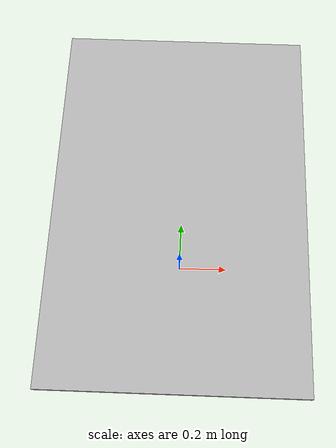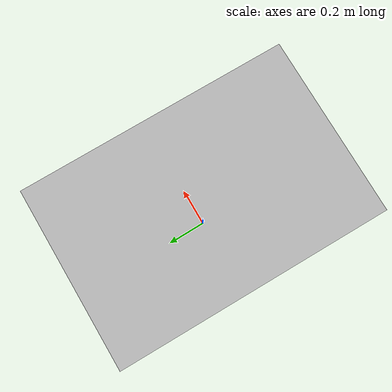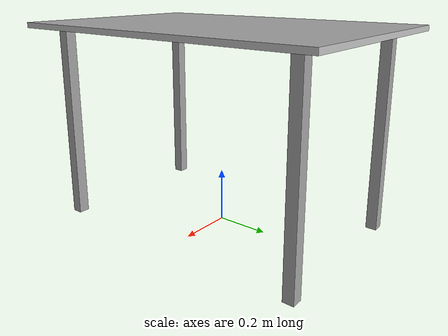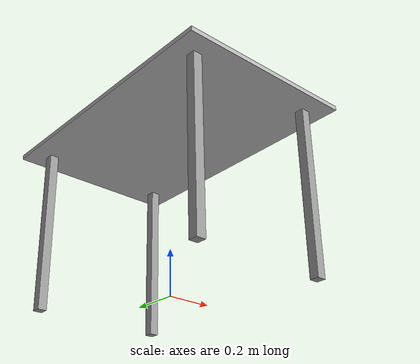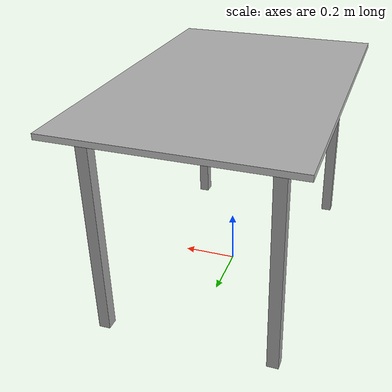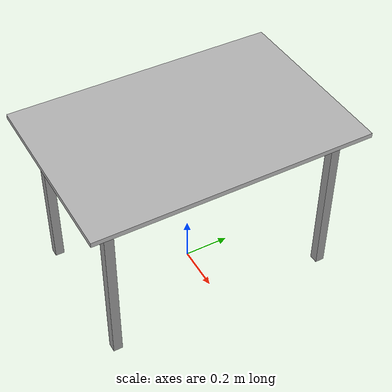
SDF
<?xml version="1.0"?>

<sdf version="1.6">
  <model name="green_table">
    <static>true</static>

    <link name="top_plate">
      <pose>0 0 0.75 0 0 0</pose>
      <collision name="top_plate_collision">
        <geometry>
          <box>
            <size>0.8 1.2 0.02</size>
          </box>
        </geometry>
        <surface>
          <contact>
            <collide_bitmask>0x01</collide_bitmask>
          </contact>
        </surface>
      </collision>
      <visual name="top_plate_visual">
        <geometry>
          <box>
            <size>0.8 1.2 0.02</size>
          </box>
        </geometry>
        <material>
          <script>
            <uri>model://green_table/materials/scripts/repeated.material</uri>
            <name>RepeatedTexture</name>
          </script>
        </material>
      </visual>
    </link>
    <link name="leg1">
      <pose>0.3 0.5 0.375 0 0 0</pose>
      <visual name="leg1_visual">
        <geometry>
          <box>
            <size>0.04 0.04 0.75</size>
          </box>
        </geometry>
        <material>
          <script>
            <uri>model://media/materials/scripts/gazebo.material</uri>
            <name>Gazebo/Grey</name>
          </script>
        </material>
      </visual>
    </link>
    <link name="leg2">
      <pose>-0.3 0.5 0.375 0 0 0</pose>
      <visual name="leg2_visual">
        <geometry>
          <box>
            <size>0.04 0.04 0.75</size>
          </box>
        </geometry>
        <material>
          <script>
            <uri>model://media/materials/scripts/gazebo.material</uri>
            <name>Gazebo/Grey</name>
          </script>
        </material>
      </visual>
    </link>
    <link name="leg3">
      <pose>0.3 -0.5 0.375 0 0 0</pose>
      <visual name="leg3_visual">
        <geometry>
          <box>
            <size>0.04 0.04 0.75</size>
          </box>
        </geometry>
        <material>
          <script>
            <uri>model://media/materials/scripts/gazebo.material</uri>
            <name>Gazebo/Grey</name>
          </script>
        </material>
      </visual>
    </link>
    <link name="leg4">
      <pose>-0.3 -0.5 0.375 0 0 0</pose>
      <visual name="leg4_visual">
        <geometry>
          <box>
            <size>0.04 0.04 0.75</size>
          </box>
        </geometry>
        <material>
          <script>
            <uri>model://media/materials/scripts/gazebo.material</uri>
            <name>Gazebo/Grey</name>
          </script>
        </material>
      </visual>
    </link>
  </model>
</sdf>
